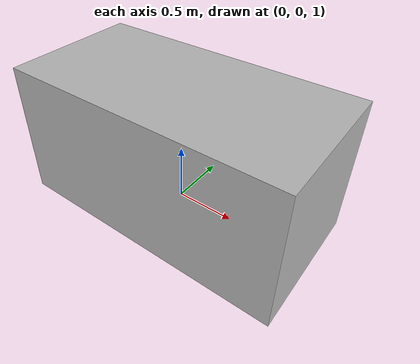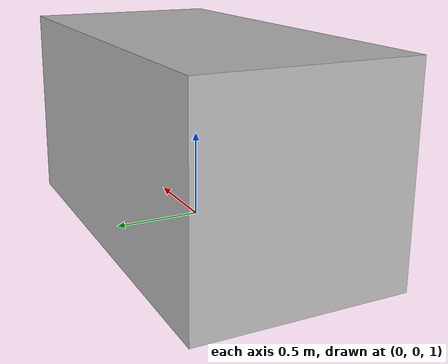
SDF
<?xml version='1.0'?>
<sdf version="1.6">
<model name="vampire_stake">

    <pose>0 0 1.5 0 0 0</pose>

    <link name="base_link">
      <inertial>
        <origin
          xyz="0.0 0.0 0.0"
          rpy="0 0 0" />
        <mass
          value="1.0" />
        <inertia
          ixx="1.0"
          ixy="0.0"
          ixz="0.0"
          iyy="1.0"
          iyz="0.0"
          izz="1.0" />
      </inertial>
      <visual name="visual">
        <geometry>
          <mesh>
            <uri>model://subway/subway.dae</uri>
          </mesh>
        </geometry>
      </visual>
      <collision name="collision">
        <geometry>
          <mesh>
            <uri>model://subway/subway.dae</uri>
          </mesh>
        </geometry>
      </collision>
    </link>

  </model>
</sdf>
